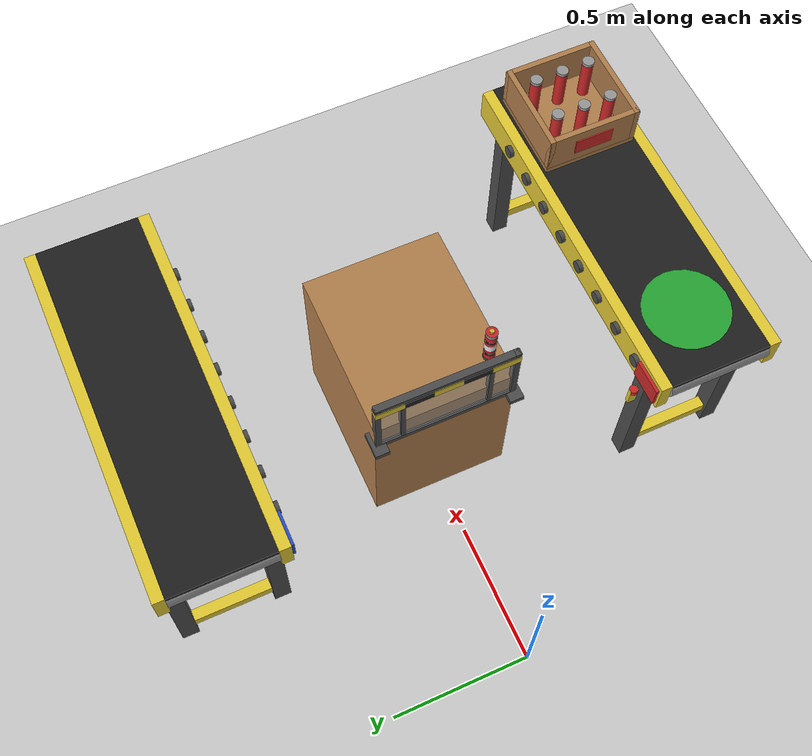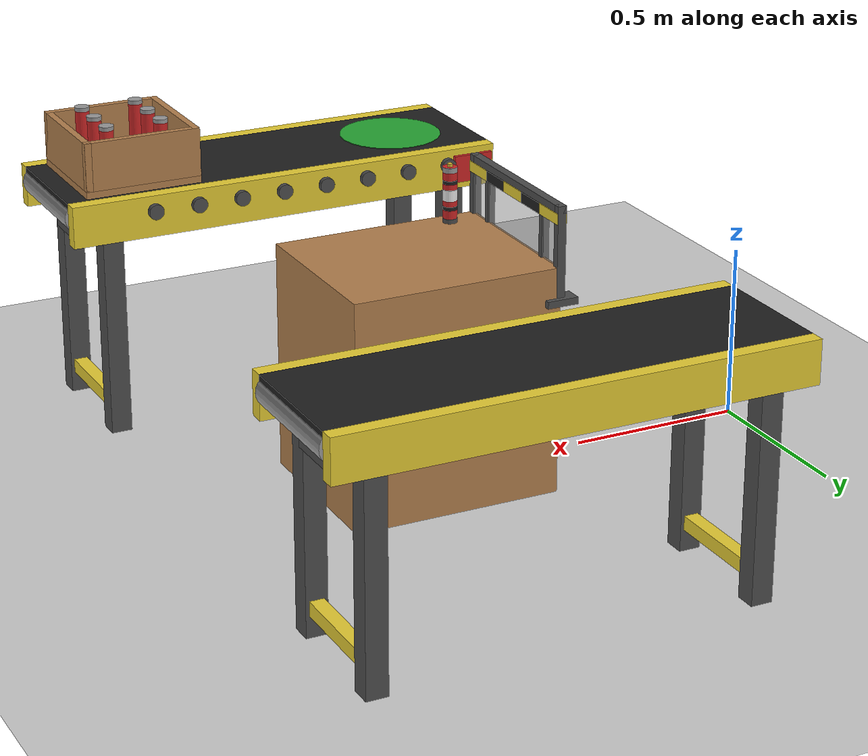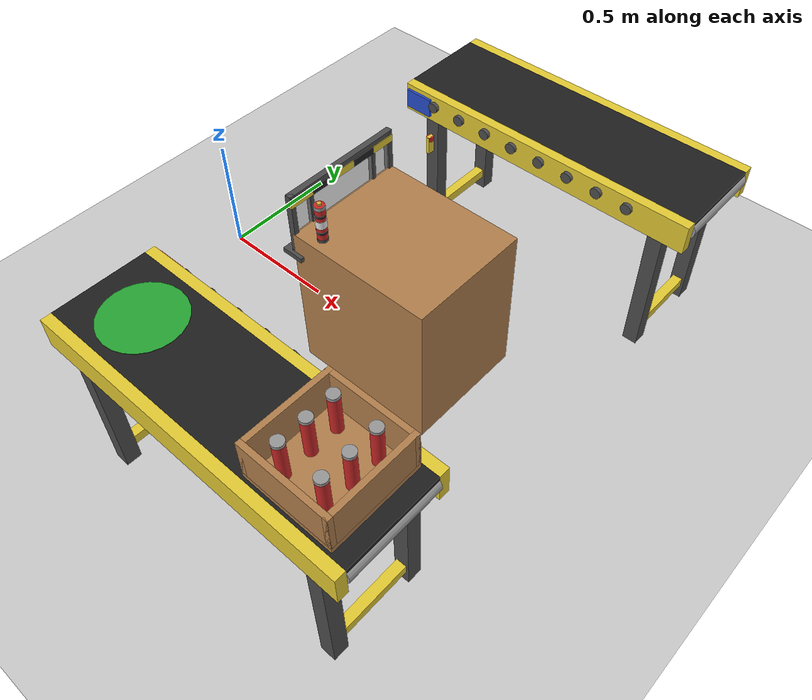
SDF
<sdf version="1.4">
 <world name="bimanual_manipulation_world">
  <include><uri>model://sun</uri></include>
  <include><uri>model://ground_plane</uri></include>
  <model name="work_table">
   <static>true</static>
   <pose>1.010 0.0 0.325 0 0 0</pose>
   <link name="link">
    <collision name="col">
     <geometry><box><size>0.60 0.50 0.65</size></box></geometry>
     <surface>
      <contact><ode><kp>1000000</kp><kd>100</kd><max_vel>0.5</max_vel><min_depth>0.001</min_depth></ode></contact>
      <friction><ode><mu>0.8</mu><mu2>0.8</mu2></ode></friction>
     </surface>
    </collision>
    <visual name="vis">
     <geometry><box><size>0.60 0.50 0.65</size></box></geometry>
     <material>
      <script><uri>file://media/materials/scripts/gazebo.material</uri><name>Gazebo/Wood</name></script>
     </material>
    </visual>
   </link>
  </model>
  <model name="placement_area_final_right">
   <static>true</static>
   <pose>0.680 -0.85 0.701 0 0 0</pose>
   <link name="link">
    <visual name="vis">
     <geometry><cylinder><radius>0.15</radius><length>0.002</length></cylinder></geometry>
     <material>
      <script><uri>file://media/materials/scripts/gazebo.material</uri><name>Gazebo/Green</name></script>
     </material>
    </visual>
   </link>
  </model>
  <model name="red_cylinder">
   <static>false</static>
   <pose>0.810 -0.20 0.730 0 0 0</pose>
   <link name="link">
    <inertial>
     <mass>0.15</mass>
     <inertia>
      <ixx>0.000309</ixx>
      <iyy>0.000309</iyy>
      <izz>0.000030</izz>
      <ixy>0</ixy>
      <ixz>0</ixz>
      <iyz>0</iyz>
     </inertia>
    </inertial>
    <collision name="col">
     <geometry><cylinder><radius>0.02</radius><length>0.16</length></cylinder></geometry>
     <surface>
      <contact>
       <ode>
        <soft_cfm>0.0</soft_cfm>
        <soft_erp>0.5</soft_erp>
        <kp>20000</kp>
        <kd>50</kd>
        <max_vel>1.0</max_vel>
        <min_depth>0.001</min_depth>
       </ode>
      </contact>
      <friction><ode><mu>0.6</mu><mu2>0.6</mu2></ode></friction>
     </surface>
    </collision>
    <visual name="vis">
     <geometry><cylinder><radius>0.02</radius><length>0.16</length></cylinder></geometry>
     <material>
      <script><uri>file://media/materials/scripts/gazebo.material</uri><name>Gazebo/Red</name></script>
     </material>
    </visual>
    <visual name="cap_top">
     <pose>0 0 0.0725 0 0 0</pose>
     <geometry><cylinder><radius>0.0205</radius><length>0.0149</length></cylinder></geometry>
     <material>
      <script><uri>file://media/materials/scripts/gazebo.material</uri><name>Gazebo/Grey</name></script>
     </material>
    </visual>
    <visual name="terminal_nub">
     <pose>0 0 0.0843 0 0 0</pose>
     <geometry><cylinder><radius>0.008</radius><length>0.0085</length></cylinder></geometry>
     <material>
      <script><uri>file://media/materials/scripts/gazebo.material</uri><name>Gazebo/Gold</name></script>
     </material>
    </visual>
    <visual name="cap_bottom">
     <pose>0 0 -0.0736 0 0 0</pose>
     <geometry><cylinder><radius>0.0205</radius><length>0.0128</length></cylinder></geometry>
     <material>
      <script><uri>file://media/materials/scripts/gazebo.material</uri><name>Gazebo/DarkGrey</name></script>
     </material>
    </visual>
    <visual name="label_band_top">
     <pose>0 0 0.0373 0 0 0</pose>
     <geometry><cylinder><radius>0.0206</radius><length>0.0107</length></cylinder></geometry>
     <material>
      <script><uri>file://media/materials/scripts/gazebo.material</uri><name>Gazebo/FlatBlack</name></script>
     </material>
    </visual>
    <visual name="label_band_bottom">
     <pose>0 0 -0.0373 0 0 0</pose>
     <geometry><cylinder><radius>0.0206</radius><length>0.0107</length></cylinder></geometry>
     <material>
      <script><uri>file://media/materials/scripts/gazebo.material</uri><name>Gazebo/FlatBlack</name></script>
     </material>
    </visual>
    <visual name="label_patch">
     <geometry><cylinder><radius>0.0207</radius><length>0.0320</length></cylinder></geometry>
     <material>
      <script><uri>file://media/materials/scripts/gazebo.material</uri><name>Gazebo/White</name></script>
     </material>
    </visual>
   </link>
  </model>
  <model name="safety_shield_assembly">
   <static>true</static>
   <pose>0.71 0.00 0.65 0 0 0</pose>
   <link name="link">
    <collision name="shield_col">
     <pose>0 0 0.035 0 0 0</pose>
     <geometry><box><size>0.02 0.50 0.27</size></box></geometry>
    </collision>
    <visual name="post_left">
     <pose>0 0.24 0.035 0 0 0</pose>
     <geometry><box><size>0.025 0.02 0.27</size></box></geometry>
     <material>
      <script><uri>file://media/materials/scripts/gazebo.material</uri><name>Gazebo/DarkGrey</name></script>
     </material>
    </visual>
    <visual name="post_right">
     <pose>0 -0.24 0.035 0 0 0</pose>
     <geometry><box><size>0.025 0.02 0.27</size></box></geometry>
     <material>
      <script><uri>file://media/materials/scripts/gazebo.material</uri><name>Gazebo/DarkGrey</name></script>
     </material>
    </visual>
    <visual name="rail_top">
     <pose>0 0.0 0.16 0 0 0</pose>
     <geometry><box><size>0.025 0.50 0.02</size></box></geometry>
     <material>
      <script><uri>file://media/materials/scripts/gazebo.material</uri><name>Gazebo/DarkGrey</name></script>
     </material>
    </visual>
    <visual name="rail_bottom">
     <pose>0 0.0 -0.09 0 0 0</pose>
     <geometry><box><size>0.025 0.50 0.02</size></box></geometry>
     <material>
      <script><uri>file://media/materials/scripts/gazebo.material</uri><name>Gazebo/DarkGrey</name></script>
     </material>
    </visual>
    <visual name="mullion_left">
     <pose>0 0.153 0.035 0 0 0</pose>
     <geometry><box><size>0.022 0.015 0.23</size></box></geometry>
     <material>
      <script><uri>file://media/materials/scripts/gazebo.material</uri><name>Gazebo/DarkGrey</name></script>
     </material>
    </visual>
    <visual name="mullion_right">
     <pose>0 -0.153 0.035 0 0 0</pose>
     <geometry><box><size>0.022 0.015 0.23</size></box></geometry>
     <material>
      <script><uri>file://media/materials/scripts/gazebo.material</uri><name>Gazebo/DarkGrey</name></script>
     </material>
    </visual>
    <visual name="glass_pane">
     <pose>0 0.0 0.035 0 0 0</pose>
     <geometry><box><size>0.012 0.46 0.23</size></box></geometry>
     <material>
      <script><uri>file://media/materials/scripts/gazebo.material</uri><name>Gazebo/Glass</name></script>
     </material>
    </visual>
    <visual name="hazard_1">
     <pose>0 -0.20 0.135 0 0 0</pose>
     <geometry><box><size>0.028 0.10 0.03</size></box></geometry>
     <material>
      <script><uri>file://media/materials/scripts/gazebo.material</uri><name>Gazebo/ZincYellow</name></script>
     </material>
    </visual>
    <visual name="hazard_2">
     <pose>0 -0.10 0.135 0 0 0</pose>
     <geometry><box><size>0.028 0.10 0.03</size></box></geometry>
     <material>
      <script><uri>file://media/materials/scripts/gazebo.material</uri><name>Gazebo/FlatBlack</name></script>
     </material>
    </visual>
    <visual name="hazard_3">
     <pose>0 0.00 0.135 0 0 0</pose>
     <geometry><box><size>0.028 0.10 0.03</size></box></geometry>
     <material>
      <script><uri>file://media/materials/scripts/gazebo.material</uri><name>Gazebo/ZincYellow</name></script>
     </material>
    </visual>
    <visual name="hazard_4">
     <pose>0 0.10 0.135 0 0 0</pose>
     <geometry><box><size>0.028 0.10 0.03</size></box></geometry>
     <material>
      <script><uri>file://media/materials/scripts/gazebo.material</uri><name>Gazebo/FlatBlack</name></script>
     </material>
    </visual>
    <visual name="hazard_5">
     <pose>0 0.20 0.135 0 0 0</pose>
     <geometry><box><size>0.028 0.10 0.03</size></box></geometry>
     <material>
      <script><uri>file://media/materials/scripts/gazebo.material</uri><name>Gazebo/ZincYellow</name></script>
     </material>
    </visual>
    <visual name="foot_left">
     <pose>0 0.24 -0.095 0 0 0</pose>
     <geometry><box><size>0.09 0.05 0.02</size></box></geometry>
     <material>
      <script><uri>file://media/materials/scripts/gazebo.material</uri><name>Gazebo/DarkGrey</name></script>
     </material>
    </visual>
    <visual name="foot_right">
     <pose>0 -0.24 -0.095 0 0 0</pose>
     <geometry><box><size>0.09 0.05 0.02</size></box></geometry>
     <material>
      <script><uri>file://media/materials/scripts/gazebo.material</uri><name>Gazebo/DarkGrey</name></script>
     </material>
    </visual>
   </link>
  </model>
  <model name="conveyor_right">
   <static>true</static>
   <link name="link">
    <collision name="col">
     <pose>1.10 -0.85 0.35 0 0 0</pose>
     <geometry><box><size>1.30 0.48 0.70</size></box></geometry>
     <surface>
      <contact><ode><kp>1000000</kp><kd>100</kd><max_vel>0.5</max_vel><min_depth>0.001</min_depth></ode></contact>
      <friction><ode><mu>0.8</mu><mu2>0.8</mu2></ode></friction>
     </surface>
    </collision>
    <visual name="belt_slab">
     <pose>1.10 -0.85 0.690 0 0 0</pose>
     <geometry><box><size>1.30 0.36 0.02</size></box></geometry>
     <material>
      <script><uri>file://media/materials/scripts/gazebo.material</uri><name>Gazebo/FlatBlack</name></script>
     </material>
    </visual>
    <visual name="drum_near">
     <pose>0.485 -0.85 0.655 1.5708 0 0</pose>
     <geometry><cylinder><radius>0.045</radius><length>0.36</length></cylinder></geometry>
     <material>
      <script><uri>file://media/materials/scripts/gazebo.material</uri><name>Gazebo/Grey</name></script>
     </material>
    </visual>
    <visual name="drum_far">
     <pose>1.715 -0.85 0.655 1.5708 0 0</pose>
     <geometry><cylinder><radius>0.045</radius><length>0.36</length></cylinder></geometry>
     <material>
      <script><uri>file://media/materials/scripts/gazebo.material</uri><name>Gazebo/Grey</name></script>
     </material>
    </visual>
    <visual name="frame_near">
     <pose>1.10 -0.65 0.640 0 0 0</pose>
     <geometry><box><size>1.30 0.04 0.12</size></box></geometry>
     <material>
      <script><uri>file://media/materials/scripts/gazebo.material</uri><name>Gazebo/ZincYellow</name></script>
     </material>
    </visual>
    <visual name="frame_far">
     <pose>1.10 -1.05 0.640 0 0 0</pose>
     <geometry><box><size>1.30 0.04 0.12</size></box></geometry>
     <material>
      <script><uri>file://media/materials/scripts/gazebo.material</uri><name>Gazebo/ZincYellow</name></script>
     </material>
    </visual>
    <visual name="roller_1">
     <pose>0.60 -0.625 0.655 1.5708 0 0</pose>
     <geometry><cylinder><radius>0.022</radius><length>0.02</length></cylinder></geometry>
     <material>
      <script><uri>file://media/materials/scripts/gazebo.material</uri><name>Gazebo/DarkGrey</name></script>
     </material>
    </visual>
    <visual name="roller_2">
     <pose>0.73 -0.625 0.655 1.5708 0 0</pose>
     <geometry><cylinder><radius>0.022</radius><length>0.02</length></cylinder></geometry>
     <material>
      <script><uri>file://media/materials/scripts/gazebo.material</uri><name>Gazebo/DarkGrey</name></script>
     </material>
    </visual>
    <visual name="roller_3">
     <pose>0.86 -0.625 0.655 1.5708 0 0</pose>
     <geometry><cylinder><radius>0.022</radius><length>0.02</length></cylinder></geometry>
     <material>
      <script><uri>file://media/materials/scripts/gazebo.material</uri><name>Gazebo/DarkGrey</name></script>
     </material>
    </visual>
    <visual name="roller_4">
     <pose>0.99 -0.625 0.655 1.5708 0 0</pose>
     <geometry><cylinder><radius>0.022</radius><length>0.02</length></cylinder></geometry>
     <material>
      <script><uri>file://media/materials/scripts/gazebo.material</uri><name>Gazebo/DarkGrey</name></script>
     </material>
    </visual>
    <visual name="roller_5">
     <pose>1.12 -0.625 0.655 1.5708 0 0</pose>
     <geometry><cylinder><radius>0.022</radius><length>0.02</length></cylinder></geometry>
     <material>
      <script><uri>file://media/materials/scripts/gazebo.material</uri><name>Gazebo/DarkGrey</name></script>
     </material>
    </visual>
    <visual name="roller_6">
     <pose>1.25 -0.625 0.655 1.5708 0 0</pose>
     <geometry><cylinder><radius>0.022</radius><length>0.02</length></cylinder></geometry>
     <material>
      <script><uri>file://media/materials/scripts/gazebo.material</uri><name>Gazebo/DarkGrey</name></script>
     </material>
    </visual>
    <visual name="roller_7">
     <pose>1.38 -0.625 0.655 1.5708 0 0</pose>
     <geometry><cylinder><radius>0.022</radius><length>0.02</length></cylinder></geometry>
     <material>
      <script><uri>file://media/materials/scripts/gazebo.material</uri><name>Gazebo/DarkGrey</name></script>
     </material>
    </visual>
    <visual name="roller_8">
     <pose>1.51 -0.625 0.655 1.5708 0 0</pose>
     <geometry><cylinder><radius>0.022</radius><length>0.02</length></cylinder></geometry>
     <material>
      <script><uri>file://media/materials/scripts/gazebo.material</uri><name>Gazebo/DarkGrey</name></script>
     </material>
    </visual>
    <visual name="leg_fl">
     <pose>0.57 -0.68 0.29 0 0 0</pose>
     <geometry><box><size>0.06 0.06 0.58</size></box></geometry>
     <material>
      <script><uri>file://media/materials/scripts/gazebo.material</uri><name>Gazebo/DarkGrey</name></script>
     </material>
    </visual>
    <visual name="leg_fr">
     <pose>0.57 -1.02 0.29 0 0 0</pose>
     <geometry><box><size>0.06 0.06 0.58</size></box></geometry>
     <material>
      <script><uri>file://media/materials/scripts/gazebo.material</uri><name>Gazebo/DarkGrey</name></script>
     </material>
    </visual>
    <visual name="leg_bl">
     <pose>1.63 -0.68 0.29 0 0 0</pose>
     <geometry><box><size>0.06 0.06 0.58</size></box></geometry>
     <material>
      <script><uri>file://media/materials/scripts/gazebo.material</uri><name>Gazebo/DarkGrey</name></script>
     </material>
    </visual>
    <visual name="leg_br">
     <pose>1.63 -1.02 0.29 0 0 0</pose>
     <geometry><box><size>0.06 0.06 0.58</size></box></geometry>
     <material>
      <script><uri>file://media/materials/scripts/gazebo.material</uri><name>Gazebo/DarkGrey</name></script>
     </material>
    </visual>
    <visual name="brace_near">
     <pose>0.57 -0.85 0.08 0 0 0</pose>
     <geometry><box><size>0.04 0.36 0.04</size></box></geometry>
     <material>
      <script><uri>file://media/materials/scripts/gazebo.material</uri><name>Gazebo/ZincYellow</name></script>
     </material>
    </visual>
    <visual name="brace_far">
     <pose>1.63 -0.85 0.08 0 0 0</pose>
     <geometry><box><size>0.04 0.36 0.04</size></box></geometry>
     <material>
      <script><uri>file://media/materials/scripts/gazebo.material</uri><name>Gazebo/ZincYellow</name></script>
     </material>
    </visual>
    <visual name="motor_housing">
     <pose>1.65 -0.85 0.60 0 0 0</pose>
     <geometry><box><size>0.10 0.14 0.10</size></box></geometry>
     <material>
      <script><uri>file://media/materials/scripts/gazebo.material</uri><name>Gazebo/DarkGrey</name></script>
     </material>
    </visual>
    <visual name="motor_gearbox">
     <pose>1.58 -0.85 0.60 0 1.5708 0</pose>
     <geometry><cylinder><radius>0.05</radius><length>0.08</length></cylinder></geometry>
     <material>
      <script><uri>file://media/materials/scripts/gazebo.material</uri><name>Gazebo/Grey</name></script>
     </material>
    </visual>
    <visual name="estop_plate">
     <pose>0.57 -0.645 0.45 0 0 0</pose>
     <geometry><box><size>0.015 0.05 0.08</size></box></geometry>
     <material>
      <script><uri>file://media/materials/scripts/gazebo.material</uri><name>Gazebo/ZincYellow</name></script>
     </material>
    </visual>
    <visual name="estop_button">
     <pose>0.57 -0.635 0.48 0 0 0</pose>
     <geometry><cylinder><radius>0.015</radius><length>0.02</length></cylinder></geometry>
     <material>
      <script><uri>file://media/materials/scripts/gazebo.material</uri><name>Gazebo/Red</name></script>
     </material>
    </visual>
    <visual name="line_code_stripe">
     <pose>0.52 -0.625 0.64 0 0 0</pose>
     <geometry><box><size>0.12 0.012 0.08</size></box></geometry>
     <material>
      <script><uri>file://media/materials/scripts/gazebo.material</uri><name>Gazebo/Red</name></script>
     </material>
    </visual>
   </link>
  </model>
  <model name="conveyor_left">
   <static>true</static>
   <link name="link">
    <collision name="col">
     <pose>1.10 0.85 0.35 0 0 0</pose>
     <geometry><box><size>1.30 0.48 0.70</size></box></geometry>
     <surface>
      <contact><ode><kp>1000000</kp><kd>100</kd><max_vel>0.5</max_vel><min_depth>0.001</min_depth></ode></contact>
      <friction><ode><mu>0.8</mu><mu2>0.8</mu2></ode></friction>
     </surface>
    </collision>
    <visual name="belt_slab">
     <pose>1.10 0.85 0.690 0 0 0</pose>
     <geometry><box><size>1.30 0.36 0.02</size></box></geometry>
     <material>
      <script><uri>file://media/materials/scripts/gazebo.material</uri><name>Gazebo/FlatBlack</name></script>
     </material>
    </visual>
    <visual name="drum_near">
     <pose>0.485 0.85 0.655 1.5708 0 0</pose>
     <geometry><cylinder><radius>0.045</radius><length>0.36</length></cylinder></geometry>
     <material>
      <script><uri>file://media/materials/scripts/gazebo.material</uri><name>Gazebo/Grey</name></script>
     </material>
    </visual>
    <visual name="drum_far">
     <pose>1.715 0.85 0.655 1.5708 0 0</pose>
     <geometry><cylinder><radius>0.045</radius><length>0.36</length></cylinder></geometry>
     <material>
      <script><uri>file://media/materials/scripts/gazebo.material</uri><name>Gazebo/Grey</name></script>
     </material>
    </visual>
    <visual name="frame_near">
     <pose>1.10 0.65 0.640 0 0 0</pose>
     <geometry><box><size>1.30 0.04 0.12</size></box></geometry>
     <material>
      <script><uri>file://media/materials/scripts/gazebo.material</uri><name>Gazebo/ZincYellow</name></script>
     </material>
    </visual>
    <visual name="frame_far">
     <pose>1.10 1.05 0.640 0 0 0</pose>
     <geometry><box><size>1.30 0.04 0.12</size></box></geometry>
     <material>
      <script><uri>file://media/materials/scripts/gazebo.material</uri><name>Gazebo/ZincYellow</name></script>
     </material>
    </visual>
    <visual name="roller_1">
     <pose>0.60 0.625 0.655 1.5708 0 0</pose>
     <geometry><cylinder><radius>0.022</radius><length>0.02</length></cylinder></geometry>
     <material>
      <script><uri>file://media/materials/scripts/gazebo.material</uri><name>Gazebo/DarkGrey</name></script>
     </material>
    </visual>
    <visual name="roller_2">
     <pose>0.73 0.625 0.655 1.5708 0 0</pose>
     <geometry><cylinder><radius>0.022</radius><length>0.02</length></cylinder></geometry>
     <material>
      <script><uri>file://media/materials/scripts/gazebo.material</uri><name>Gazebo/DarkGrey</name></script>
     </material>
    </visual>
    <visual name="roller_3">
     <pose>0.86 0.625 0.655 1.5708 0 0</pose>
     <geometry><cylinder><radius>0.022</radius><length>0.02</length></cylinder></geometry>
     <material>
      <script><uri>file://media/materials/scripts/gazebo.material</uri><name>Gazebo/DarkGrey</name></script>
     </material>
    </visual>
    <visual name="roller_4">
     <pose>0.99 0.625 0.655 1.5708 0 0</pose>
     <geometry><cylinder><radius>0.022</radius><length>0.02</length></cylinder></geometry>
     <material>
      <script><uri>file://media/materials/scripts/gazebo.material</uri><name>Gazebo/DarkGrey</name></script>
     </material>
    </visual>
    <visual name="roller_5">
     <pose>1.12 0.625 0.655 1.5708 0 0</pose>
     <geometry><cylinder><radius>0.022</radius><length>0.02</length></cylinder></geometry>
     <material>
      <script><uri>file://media/materials/scripts/gazebo.material</uri><name>Gazebo/DarkGrey</name></script>
     </material>
    </visual>
    <visual name="roller_6">
     <pose>1.25 0.625 0.655 1.5708 0 0</pose>
     <geometry><cylinder><radius>0.022</radius><length>0.02</length></cylinder></geometry>
     <material>
      <script><uri>file://media/materials/scripts/gazebo.material</uri><name>Gazebo/DarkGrey</name></script>
     </material>
    </visual>
    <visual name="roller_7">
     <pose>1.38 0.625 0.655 1.5708 0 0</pose>
     <geometry><cylinder><radius>0.022</radius><length>0.02</length></cylinder></geometry>
     <material>
      <script><uri>file://media/materials/scripts/gazebo.material</uri><name>Gazebo/DarkGrey</name></script>
     </material>
    </visual>
    <visual name="roller_8">
     <pose>1.51 0.625 0.655 1.5708 0 0</pose>
     <geometry><cylinder><radius>0.022</radius><length>0.02</length></cylinder></geometry>
     <material>
      <script><uri>file://media/materials/scripts/gazebo.material</uri><name>Gazebo/DarkGrey</name></script>
     </material>
    </visual>
    <visual name="leg_fl">
     <pose>0.57 0.68 0.29 0 0 0</pose>
     <geometry><box><size>0.06 0.06 0.58</size></box></geometry>
     <material>
      <script><uri>file://media/materials/scripts/gazebo.material</uri><name>Gazebo/DarkGrey</name></script>
     </material>
    </visual>
    <visual name="leg_fr">
     <pose>0.57 1.02 0.29 0 0 0</pose>
     <geometry><box><size>0.06 0.06 0.58</size></box></geometry>
     <material>
      <script><uri>file://media/materials/scripts/gazebo.material</uri><name>Gazebo/DarkGrey</name></script>
     </material>
    </visual>
    <visual name="leg_bl">
     <pose>1.63 0.68 0.29 0 0 0</pose>
     <geometry><box><size>0.06 0.06 0.58</size></box></geometry>
     <material>
      <script><uri>file://media/materials/scripts/gazebo.material</uri><name>Gazebo/DarkGrey</name></script>
     </material>
    </visual>
    <visual name="leg_br">
     <pose>1.63 1.02 0.29 0 0 0</pose>
     <geometry><box><size>0.06 0.06 0.58</size></box></geometry>
     <material>
      <script><uri>file://media/materials/scripts/gazebo.material</uri><name>Gazebo/DarkGrey</name></script>
     </material>
    </visual>
    <visual name="brace_near">
     <pose>0.57 0.85 0.08 0 0 0</pose>
     <geometry><box><size>0.04 0.36 0.04</size></box></geometry>
     <material>
      <script><uri>file://media/materials/scripts/gazebo.material</uri><name>Gazebo/ZincYellow</name></script>
     </material>
    </visual>
    <visual name="brace_far">
     <pose>1.63 0.85 0.08 0 0 0</pose>
     <geometry><box><size>0.04 0.36 0.04</size></box></geometry>
     <material>
      <script><uri>file://media/materials/scripts/gazebo.material</uri><name>Gazebo/ZincYellow</name></script>
     </material>
    </visual>
    <visual name="motor_housing">
     <pose>1.65 0.85 0.60 0 0 0</pose>
     <geometry><box><size>0.10 0.14 0.10</size></box></geometry>
     <material>
      <script><uri>file://media/materials/scripts/gazebo.material</uri><name>Gazebo/DarkGrey</name></script>
     </material>
    </visual>
    <visual name="motor_gearbox">
     <pose>1.58 0.85 0.60 0 1.5708 0</pose>
     <geometry><cylinder><radius>0.05</radius><length>0.08</length></cylinder></geometry>
     <material>
      <script><uri>file://media/materials/scripts/gazebo.material</uri><name>Gazebo/Grey</name></script>
     </material>
    </visual>
    <visual name="estop_plate">
     <pose>0.57 0.645 0.45 0 0 0</pose>
     <geometry><box><size>0.015 0.05 0.08</size></box></geometry>
     <material>
      <script><uri>file://media/materials/scripts/gazebo.material</uri><name>Gazebo/ZincYellow</name></script>
     </material>
    </visual>
    <visual name="estop_button">
     <pose>0.57 0.635 0.48 0 0 0</pose>
     <geometry><cylinder><radius>0.015</radius><length>0.02</length></cylinder></geometry>
     <material>
      <script><uri>file://media/materials/scripts/gazebo.material</uri><name>Gazebo/Red</name></script>
     </material>
    </visual>
    <visual name="line_code_stripe">
     <pose>0.52 0.625 0.64 0 0 0</pose>
     <geometry><box><size>0.12 0.012 0.08</size></box></geometry>
     <material>
      <script><uri>file://media/materials/scripts/gazebo.material</uri><name>Gazebo/Blue</name></script>
     </material>
    </visual>
   </link>
  </model>
  <model name="battery_chest_right">
   <static>true</static>
   <pose>1.52 -0.85 0 0 0 0</pose>
   <link name="link">
    <visual name="chest_floor">
     <pose>0 0 0.710 0 0 0</pose>
     <geometry><box><size>0.34 0.34 0.02</size></box></geometry>
     <material>
      <script><uri>file://media/materials/scripts/gazebo.material</uri><name>Gazebo/Wood</name></script>
     </material>
    </visual>
    <visual name="wall_far">
     <pose>0.16 0 0.790 0 0 0</pose>
     <geometry><box><size>0.02 0.34 0.14</size></box></geometry>
     <material>
      <script><uri>file://media/materials/scripts/gazebo.material</uri><name>Gazebo/Wood</name></script>
     </material>
    </visual>
    <visual name="wall_near">
     <pose>-0.16 0 0.790 0 0 0</pose>
     <geometry><box><size>0.02 0.34 0.14</size></box></geometry>
     <material>
      <script><uri>file://media/materials/scripts/gazebo.material</uri><name>Gazebo/Wood</name></script>
     </material>
    </visual>
    <visual name="wall_outer">
     <pose>0 -0.16 0.790 0 0 0</pose>
     <geometry><box><size>0.34 0.02 0.14</size></box></geometry>
     <material>
      <script><uri>file://media/materials/scripts/gazebo.material</uri><name>Gazebo/Wood</name></script>
     </material>
    </visual>
    <visual name="wall_inner">
     <pose>0 0.16 0.790 0 0 0</pose>
     <geometry><box><size>0.34 0.02 0.14</size></box></geometry>
     <material>
      <script><uri>file://media/materials/scripts/gazebo.material</uri><name>Gazebo/Wood</name></script>
     </material>
    </visual>
    <visual name="label_plate">
     <pose>-0.172 0 0.790 0 0 0</pose>
     <geometry><box><size>0.005 0.14 0.06</size></box></geometry>
     <material>
      <script><uri>file://media/materials/scripts/gazebo.material</uri><name>Gazebo/Red</name></script>
     </material>
    </visual>
    <visual name="battery_1">
     <pose>-0.08 -0.10 0.795 0 0 0</pose>
     <geometry><cylinder><radius>0.02</radius><length>0.15</length></cylinder></geometry>
     <material>
      <script><uri>file://media/materials/scripts/gazebo.material</uri><name>Gazebo/Red</name></script>
     </material>
    </visual>
    <visual name="battery_1_cap">
     <pose>-0.08 -0.10 0.876 0 0 0</pose>
     <geometry><cylinder><radius>0.021</radius><length>0.012</length></cylinder></geometry>
     <material>
      <script><uri>file://media/materials/scripts/gazebo.material</uri><name>Gazebo/Grey</name></script>
     </material>
    </visual>
    <visual name="battery_2">
     <pose>-0.08 0.00 0.795 0 0 0</pose>
     <geometry><cylinder><radius>0.02</radius><length>0.15</length></cylinder></geometry>
     <material>
      <script><uri>file://media/materials/scripts/gazebo.material</uri><name>Gazebo/Red</name></script>
     </material>
    </visual>
    <visual name="battery_2_cap">
     <pose>-0.08 0.00 0.876 0 0 0</pose>
     <geometry><cylinder><radius>0.021</radius><length>0.012</length></cylinder></geometry>
     <material>
      <script><uri>file://media/materials/scripts/gazebo.material</uri><name>Gazebo/Grey</name></script>
     </material>
    </visual>
    <visual name="battery_3">
     <pose>-0.08 0.10 0.795 0 0 0</pose>
     <geometry><cylinder><radius>0.02</radius><length>0.15</length></cylinder></geometry>
     <material>
      <script><uri>file://media/materials/scripts/gazebo.material</uri><name>Gazebo/Red</name></script>
     </material>
    </visual>
    <visual name="battery_3_cap">
     <pose>-0.08 0.10 0.876 0 0 0</pose>
     <geometry><cylinder><radius>0.021</radius><length>0.012</length></cylinder></geometry>
     <material>
      <script><uri>file://media/materials/scripts/gazebo.material</uri><name>Gazebo/Grey</name></script>
     </material>
    </visual>
    <visual name="battery_4">
     <pose>0.08 -0.10 0.795 0 0 0</pose>
     <geometry><cylinder><radius>0.02</radius><length>0.15</length></cylinder></geometry>
     <material>
      <script><uri>file://media/materials/scripts/gazebo.material</uri><name>Gazebo/Red</name></script>
     </material>
    </visual>
    <visual name="battery_4_cap">
     <pose>0.08 -0.10 0.876 0 0 0</pose>
     <geometry><cylinder><radius>0.021</radius><length>0.012</length></cylinder></geometry>
     <material>
      <script><uri>file://media/materials/scripts/gazebo.material</uri><name>Gazebo/Grey</name></script>
     </material>
    </visual>
    <visual name="battery_5">
     <pose>0.08 0.00 0.795 0 0 0</pose>
     <geometry><cylinder><radius>0.02</radius><length>0.15</length></cylinder></geometry>
     <material>
      <script><uri>file://media/materials/scripts/gazebo.material</uri><name>Gazebo/Red</name></script>
     </material>
    </visual>
    <visual name="battery_5_cap">
     <pose>0.08 0.00 0.876 0 0 0</pose>
     <geometry><cylinder><radius>0.021</radius><length>0.012</length></cylinder></geometry>
     <material>
      <script><uri>file://media/materials/scripts/gazebo.material</uri><name>Gazebo/Grey</name></script>
     </material>
    </visual>
    <visual name="battery_6">
     <pose>0.08 0.10 0.795 0 0 0</pose>
     <geometry><cylinder><radius>0.02</radius><length>0.15</length></cylinder></geometry>
     <material>
      <script><uri>file://media/materials/scripts/gazebo.material</uri><name>Gazebo/Red</name></script>
     </material>
    </visual>
    <visual name="battery_6_cap">
     <pose>0.08 0.10 0.876 0 0 0</pose>
     <geometry><cylinder><radius>0.021</radius><length>0.012</length></cylinder></geometry>
     <material>
      <script><uri>file://media/materials/scripts/gazebo.material</uri><name>Gazebo/Grey</name></script>
     </material>
    </visual>
   </link>
  </model>
 </world>
</sdf>
